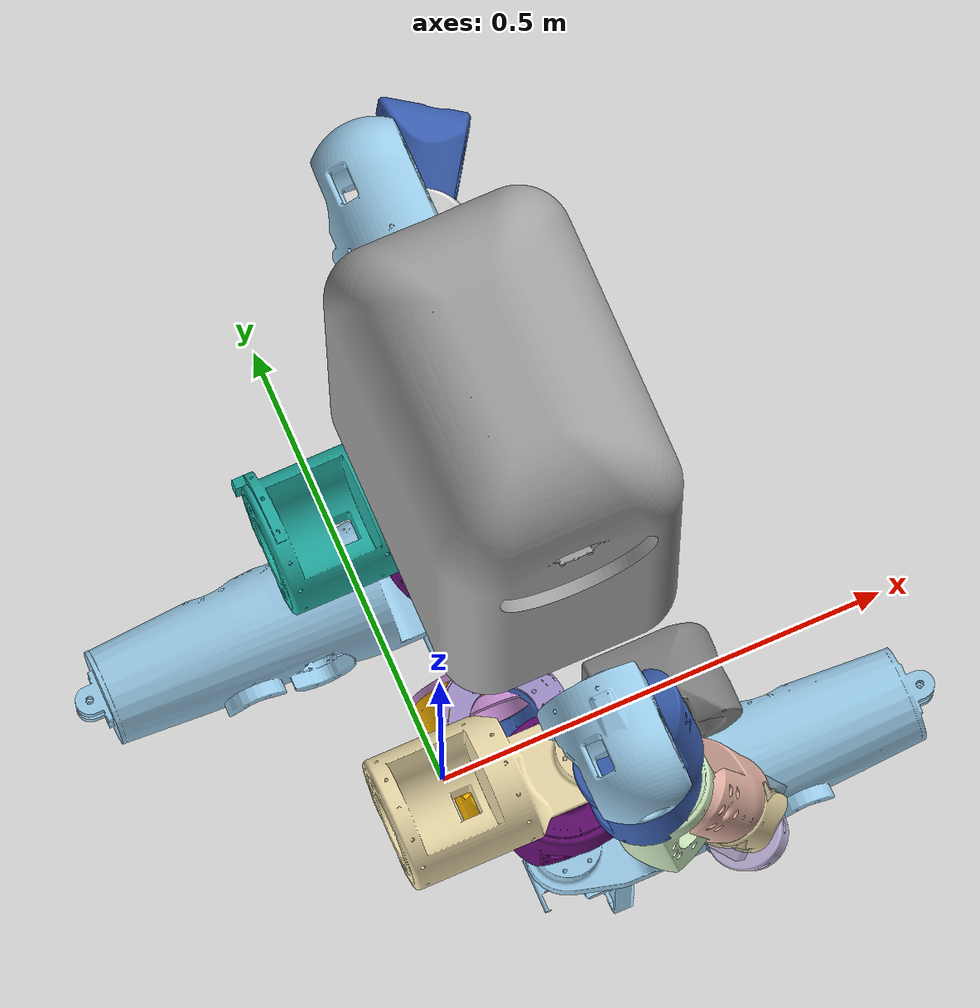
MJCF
<?xml version='1.0' encoding='utf-8'?>
<mujoco model="robot_harambe_v04">
  <compiler angle="radian" />
  <asset>
    <mesh name="b_base" content_type="model/stl" file="/home/alex/Documents/GitHub/ldr-harambe-arms-sim2real/src/robot_description/full_robot_description/meshes/visual/b_base.stl" />
    <mesh name="plate_base_right" content_type="model/stl" file="/home/alex/Documents/GitHub/ldr-harambe-arms-sim2real/src/robot_description/full_robot_description/meshes/visual/plate_base_right.stl" />
    <mesh name="f_base" content_type="model/stl" file="/home/alex/Documents/GitHub/ldr-harambe-arms-sim2real/src/robot_description/full_robot_description/meshes/visual/f_base.stl" />
    <mesh name="plate_base_left" content_type="model/stl" file="/home/alex/Documents/GitHub/ldr-harambe-arms-sim2real/src/robot_description/full_robot_description/meshes/visual/plate_base_left.stl" />
    <mesh name="plate_base_top" content_type="model/stl" file="/home/alex/Documents/GitHub/ldr-harambe-arms-sim2real/src/robot_description/full_robot_description/meshes/visual/plate_base_top.stl" />
    <mesh name="jockstrap" content_type="model/stl" file="/home/alex/Documents/GitHub/ldr-harambe-arms-sim2real/src/robot_description/full_robot_description/meshes/visual/jockstrap.stl" />
    <mesh name="urdf_simplified_torso" content_type="model/stl" file="/home/alex/Documents/GitHub/ldr-harambe-arms-sim2real/src/robot_description/full_robot_description/meshes/visual/urdf_simplified_torso.stl" />
    <mesh name="head" content_type="model/stl" file="/home/alex/Documents/GitHub/ldr-harambe-arms-sim2real/src/robot_description/full_robot_description/meshes/visual/head.stl" />
    <mesh name="l_shoulder" content_type="model/stl" file="/home/alex/Documents/GitHub/ldr-harambe-arms-sim2real/src/robot_description/full_robot_description/meshes/visual/l_shoulder.stl" />
    <mesh name="urdf_l_upper_arm_simplified" content_type="model/stl" file="/home/alex/Documents/GitHub/ldr-harambe-arms-sim2real/src/robot_description/full_robot_description/meshes/visual/urdf_l_upper_arm_simplified.stl" />
    <mesh name="urdf_l_elbow_simplified" content_type="model/stl" file="/home/alex/Documents/GitHub/ldr-harambe-arms-sim2real/src/robot_description/full_robot_description/meshes/visual/urdf_l_elbow_simplified.stl" />
    <mesh name="urdf_l_upper_forearm_simplified" content_type="model/stl" file="/home/alex/Documents/GitHub/ldr-harambe-arms-sim2real/src/robot_description/full_robot_description/meshes/visual/urdf_l_upper_forearm_simplified.stl" />
    <mesh name="urdf_l_lower_forearm_simplified" content_type="model/stl" file="/home/alex/Documents/GitHub/ldr-harambe-arms-sim2real/src/robot_description/full_robot_description/meshes/visual/urdf_l_lower_forearm_simplified.stl" />
    <mesh name="l_wrist" content_type="model/stl" file="/home/alex/Documents/GitHub/ldr-harambe-arms-sim2real/src/robot_description/full_robot_description/meshes/visual/l_wrist.stl" />
    <mesh name="r_shoulder" content_type="model/stl" file="/home/alex/Documents/GitHub/ldr-harambe-arms-sim2real/src/robot_description/full_robot_description/meshes/visual/r_shoulder.stl" />
    <mesh name="r_upper_arm" content_type="model/stl" file="/home/alex/Documents/GitHub/ldr-harambe-arms-sim2real/src/robot_description/full_robot_description/meshes/visual/r_upper_arm.stl" />
    <mesh name="r_elbow" content_type="model/stl" file="/home/alex/Documents/GitHub/ldr-harambe-arms-sim2real/src/robot_description/full_robot_description/meshes/visual/r_elbow.stl" />
    <mesh name="r_upper_forearm" content_type="model/stl" file="/home/alex/Documents/GitHub/ldr-harambe-arms-sim2real/src/robot_description/full_robot_description/meshes/visual/r_upper_forearm.stl" />
    <mesh name="r_lower_forearm" content_type="model/stl" file="/home/alex/Documents/GitHub/ldr-harambe-arms-sim2real/src/robot_description/full_robot_description/meshes/visual/r_lower_forearm.stl" />
    <mesh name="r_wrist" content_type="model/stl" file="/home/alex/Documents/GitHub/ldr-harambe-arms-sim2real/src/robot_description/full_robot_description/meshes/visual/r_wrist.stl" />
    <mesh name="hip" content_type="model/stl" file="/home/alex/Documents/GitHub/ldr-harambe-arms-sim2real/src/robot_description/full_robot_description/meshes/visual/hip.stl" />
    <mesh name="stopper_leg_28_75" content_type="model/stl" file="/home/alex/Documents/GitHub/ldr-harambe-arms-sim2real/src/robot_description/full_robot_description/meshes/visual/stopper_leg_28_75.stl" />
    <mesh name="l_upper_femur" content_type="model/stl" file="/home/alex/Documents/GitHub/ldr-harambe-arms-sim2real/src/robot_description/full_robot_description/meshes/visual/l_upper_femur.stl" />
    <mesh name="stopper_leg_22_5" content_type="model/stl" file="/home/alex/Documents/GitHub/ldr-harambe-arms-sim2real/src/robot_description/full_robot_description/meshes/visual/stopper_leg_22_5.stl" />
    <mesh name="lower_femur" content_type="model/stl" file="/home/alex/Documents/GitHub/ldr-harambe-arms-sim2real/src/robot_description/full_robot_description/meshes/visual/lower_femur.stl" />
    <mesh name="urdf_l_tibia_assembly" content_type="model/stl" file="/home/alex/Documents/GitHub/ldr-harambe-arms-sim2real/src/robot_description/full_robot_description/meshes/visual/urdf_l_tibia_assembly.stl" />
    <mesh name="urdf_ankle_assembly" content_type="model/stl" file="/home/alex/Documents/GitHub/ldr-harambe-arms-sim2real/src/robot_description/full_robot_description/meshes/visual/urdf_ankle_assembly.stl" />
    <mesh name="urdf_foot_assembly" content_type="model/stl" file="/home/alex/Documents/GitHub/ldr-harambe-arms-sim2real/src/robot_description/full_robot_description/meshes/visual/urdf_foot_assembly.stl" />
    <mesh name="r_upper_femur" content_type="model/stl" file="/home/alex/Documents/GitHub/ldr-harambe-arms-sim2real/src/robot_description/full_robot_description/meshes/visual/r_upper_femur.stl" />
    <mesh name="urdf_r_tibia_assembly" content_type="model/stl" file="/home/alex/Documents/GitHub/ldr-harambe-arms-sim2real/src/robot_description/full_robot_description/meshes/visual/urdf_r_tibia_assembly.stl" />
  </asset>
  <worldbody>
    <body name="urdf_base" pos="0 0 1.2085">
      <inertial pos="0.071983 -0.000707749 -0.396794" mass="5.734" diaginertia="0.029089 0.0240807 0.0160144" />
      <freejoint name="root" />
      <geom pos="0.070373 -0.000705351 -1.1821" quat="0.707105 0 0 -0.707108" type="mesh" rgba="0.980392 0.713725 0.00392157 1" mesh="b_base" />
      <geom pos="0.070373 -0.000705351 0.319901" quat="9.38184e-07 -0.707105 0.707108 -9.38187e-07" type="mesh" rgba="0.654902 0.823529 0.576471 1" mesh="plate_base_right" />
      <geom pos="0.070373 -0.000705351 -1.1821" quat="0.707105 0 0 -0.707108" type="mesh" rgba="0.231373 0.380392 0.705882 1" mesh="f_base" />
      <geom pos="0.070373 -0.000705351 -1.1821" quat="0.707105 0 0 -0.707108" type="mesh" rgba="0.764706 0.545098 0.803922 1" mesh="plate_base_left" />
      <geom pos="0.070373 -0.000705351 -1.1821" quat="0.707105 0 0 -0.707108" type="mesh" rgba="0.654902 0.584314 0.823529 1" mesh="plate_base_top" />
      <geom pos="0.070373 -0.000705351 -0.431099" quat="0.707105 0 0 -0.707108" type="mesh" rgba="0.615686 0.811765 0.929412 1" mesh="jockstrap" />
      <body name="urdf_simplified_torso" pos="0.070373 -0.000705351 -0.281099">
        <inertial pos="0.00199132 -4.19393e-05 0.328473" mass="5.90423" fullinertia="0.318197 0.294961 0.0735035 5.25211e-07 -0.00444278 9.73773e-05" />
        <joint name="waist_yaw_joint_X8" pos="0 0 0" axis="0 0 1" range="-1.57 1.57" armature="0.0577" limited="true" frictionloss="3.21" />
        <geom pos="0 0 0.26095" quat="0.707105 0 0 -0.707108" type="mesh" rgba="0.647059 0.647059 0.647059 1" mesh="urdf_simplified_torso" />
        <geom pos="4.11536e-05 -0.000384166 0.6725" quat="0.707105 0 0 -0.707108" type="mesh" rgba="0.737255 0.937255 0.917647 1" mesh="head" />
        <body name="urdf_l_shoulder_assembly" pos="0 0.1695 0.423977">
          <inertial pos="-0.00409836 0.0631966 -0.000544507" mass="1.246" fullinertia="0.00205876 0.00152408 0.00171602 -3.48871e-05 4.1195e-05 -7.63845e-06" />
          <joint name="left_shoulder_pitch_joint_X6" pos="0 0 0" axis="0 1 0" range="-3.02 1.69" armature="0.0254" limited="true" frictionloss="1.6" />
          <geom pos="-0.00129022 0.0502746 -0.000165439" quat="0.705787 0.0431688 -0.043169 -0.705789" type="mesh" rgba="0.615686 0.811765 0.929412 1" mesh="l_shoulder" />
          <body name="urdf_l_upper_arm_assembly" pos="0.0456571 0.07 0.00560611" quat="0.998135 0 -0.06105 0">
            <inertial pos="-0.0354438 0.0213187 -0.103332" mass="0.802" fullinertia="0.00190836 0.00203106 0.00107639 8.88428e-05 -0.000467525 0.000183116" />
            <joint name="left_shoulder_roll_joint_X6" pos="0 0 0" axis="1 0 0" range="-0.21 2.93" armature="0.0254" limited="true" frictionloss="1.6" />
            <geom pos="-0.0268697 0.0182152 -0.0914675" quat="0.918818 0.0965753 0.0400017 -0.380587" type="mesh" rgba="0.917647 0.917647 0.917647 1" mesh="urdf_l_upper_arm_simplified" />
            <body name="urdf_l_elbow_assembly" pos="-0.046 0.034306 -0.161394" quat="0.99444 0.104525 0.00133297 -0.0126919">
              <inertial pos="-0.004748 -0.00662541 -0.0710681" mass="1.109" fullinertia="0.00145153 0.00147549 0.00114035 5.51714e-05 -3.01713e-05 -7.59581e-05" />
              <joint name="left_shoulder_yaw_joint_X4" pos="0 0 0" axis="0 0 1" range="-1.75 2.97" armature="0.0389" limited="true" frictionloss="1.14" />
              <geom pos="-0.00676793 -0.0102107 -0.075" quat="0.334487 0.622994 0.334483 -0.622991" type="mesh" rgba="0.231373 0.380392 0.705882 1" mesh="urdf_l_elbow_simplified" />
              <body name="urdf_l_upper_forearm_assembly" pos="0.0193369 0.0291733 -0.075" quat="0.957432 -0.00275413 -0.00914002 -0.2885">
                <inertial pos="0.0267132 -0.0286559 -0.0999185" mass="0.707" fullinertia="0.00162524 0.00146156 0.000776911 9.29307e-05 0.000226906 -0.000353662" />
                <joint name="left_elbow_pitch_joint_X6" pos="0 0 0" axis="0 1 0" range="-1.31 1.83" armature="0.0254" limited="true" frictionloss="1.6" />
                <geom pos="0.0285991 -0.035 -0.115512" quat="0.701905 0.0855982 -0.0855985 -0.701908" type="mesh" rgba="0.498039 0.498039 0.498039 1" mesh="urdf_l_upper_forearm_simplified" />
                <body name="urdf_l_lower_forearm_assembly" pos="0.0391735 -0.035 -0.158223" quat="0.945344 -0.0369251 -0.115285 0.302772">
                  <inertial pos="-0.00311766 0.00307025 -0.0515634" mass="0.618" fullinertia="0.000628386 0.000617293 0.000448744 -1.68351e-06 -2.8195e-05 -3.24981e-07" />
                  <joint name="left_wrist_yaw_joint_X4" pos="0 0 0" axis="0 0 1" range="-2.36 2.36" armature="0.0389" limited="true" frictionloss="1.14" />
                  <geom pos="-0.00732538 0.00522865 -0.0615" quat="0.62868 -0.628682 -0.323668 0.323666" type="mesh" rgba="0.980392 0.713725 0.00392157 1" mesh="urdf_l_lower_forearm_simplified" />
                  <body name="urdf_l_wrist_assembly" pos="0.0219762 -0.0156859 -0.0615" quat="0.945019 -0.117921 0.0377673 -0.302668">
                    <inertial pos="-0.0219307 0.0106852 -0.0421315" mass="0.098" fullinertia="0.000100785 0.000121426 9.6353e-05 8.20205e-06 -3.2373e-05 6.79922e-06" />
                    <joint name="left_wrist_roll_joint_X4" pos="0 0 0" axis="1 0 0" range="-1.57 1.57" armature="0.0389" limited="true" frictionloss="1.14" />
                    <geom pos="-0.0219314 0.0106852 -0.0421315" quat="0.701664 0.0875548 0.0875544 -0.701667" type="mesh" rgba="0.8 0.74902 0.913725 1" mesh="l_wrist" />
                    <body name="left_hand" pos="-0.034 0.015 -0.06">
                      <inertial pos="-0.003 -0.066 -0.002" mass="0.576" diaginertia="0.00012281 8.3832e-05 7.6663e-05" />
                      <geom type="box" size="0.04 0.025 0.07" rgba="0.5 0.5 0.5 0.3" contype="0" conaffinity="0" />
                    </body>
                  </body>
                </body>
              </body>
            </body>
          </body>
        </body>
        <body name="urdf_r_shoulder_assembly" pos="0 -0.1695 0.423977">
          <inertial pos="-0.0047018 -0.0660727 -0.000602826" mass="1.02" fullinertia="0.0013257 0.00104972 0.0011458 1.37507e-05 2.16644e-05 3.46311e-06" />
          <joint name="right_shoulder_pitch_joint_X6" pos="0 0 0" axis="0 1 0" range="-3.02 1.69" armature="0.0254" limited="true" frictionloss="1.6" />
          <geom pos="-0.00128021 -0.0501448 -0.000164156" quat="0.705787 0.0431688 -0.043169 -0.705789" type="mesh" rgba="0.615686 0.811765 0.929412 1" mesh="r_shoulder" />
          <body name="urdf_r_upper_arm_assembly" pos="0.0456571 -0.07 0.00560611" quat="0.998135 0 -0.06105 0">
            <inertial pos="-0.0347331 -0.0216398 -0.101809" mass="0.802" fullinertia="0.00188605 0.00200295 0.00106039 -9.73927e-05 -0.00045821 -0.000209822" />
            <joint name="right_shoulder_roll_joint_X6" pos="0 0 0" axis="1 0 0" range="-2.93 0.21" armature="0.0254" limited="true" frictionloss="1.6" />
            <geom pos="-0.025543 -0.0188222 -0.0885532" quat="0.703232 -0.0739117 -0.0739114 -0.703235" type="mesh" rgba="0.231373 0.380392 0.705882 1" mesh="r_upper_arm" />
            <body name="urdf_r_elbow_assembly" pos="-0.046 -0.0353444 -0.166285" quat="0.994441 -0.104518 0.00133208 0.0126917">
              <inertial pos="-0.00464628 0.00706688 -0.0612736" mass="1.109" fullinertia="0.00142737 0.00147543 0.00111817 -5.60371e-05 -3.53572e-05 4.92594e-05" />
              <joint name="right_shoulder_yaw_joint_X4" pos="0 0 0" axis="0 0 1" range="-2.97 1.75" armature="0.0389" limited="true" frictionloss="1.14" />
              <geom pos="0.000192865 -0.000269971 -0.0512953" quat="0.881046 0 0 -0.473031" type="mesh" rgba="0.796078 0.905882 0.745098 1" mesh="r_elbow" />
              <body name="urdf_r_upper_forearm_assembly" pos="0.0220994 -0.033341 -0.065" quat="0.957433 0.00275256 -0.00913491 0.288497">
                <inertial pos="0.0266786 0.0327896 -0.0982602" mass="0.707" fullinertia="0.00160609 0.0014499 0.000766591 -9.59596e-05 0.000238823 0.00033935" />
                <joint name="right_elbow_pitch_joint_X6" pos="0 0 0" axis="0 1 0" range="-1.31 1.83" armature="0.0254" limited="true" frictionloss="1.6" />
                <geom pos="0.0247724 0.0254856 -0.0806199" quat="0.701905 0.0856045 -0.0856048 -0.701907" type="mesh" rgba="0.890196 0.698039 0.639216 1" mesh="r_upper_forearm" />
                <body name="urdf_r_lower_forearm_assembly" pos="0.0403774 0.04 -0.163076" quat="0.945344 0.036924 -0.115291 -0.302768">
                  <inertial pos="-0.00325453 -0.0023229 -0.046852" mass="0.618" fullinertia="0.000617744 0.000618165 0.000437775 -6.12409e-07 -3.11927e-05 -2.22632e-05" />
                  <joint name="right_wrist_yaw_joint_X4" pos="0 0 0" axis="0 0 1" range="-2.36 2.36" armature="0.0389" limited="true" frictionloss="1.14" />
                  <geom pos="0.00167509 0.00119554 -0.0333447" quat="0.889087 0 0 -0.457739" type="mesh" rgba="0.941176 0.87451 0.678431 1" mesh="r_lower_forearm" />
                  <body name="urdf_r_wrist_assembly" pos="0.0219763 0.0156857 -0.0565" quat="0.945021 0.117919 0.037766 0.302662">
                    <inertial pos="-0.0219123 -0.0106789 -0.0421059" mass="0.15" fullinertia="0.000154293 0.000185908 0.00014762 -1.25537e-05 -4.9547e-05 -1.03834e-05" />
                    <joint name="right_wrist_roll_joint_X4" pos="0 0 0" axis="1 0 0" range="-1.57 1.57" armature="0.0389" limited="true" frictionloss="1.14" />
                    <geom pos="-0.0219316 -0.0106852 -0.0421314" quat="0.701664 -0.0875537 -0.0875534 -0.701667" type="mesh" rgba="0.8 0.74902 0.913725 1" mesh="r_wrist" />
                    <body name="right_hand" pos="-0.029 -0.011 -0.06">
                      <inertial pos="-0.003 -0.066 0.002" mass="0.576" diaginertia="0.00012281 8.3832e-05 7.6663e-05" />
                      <geom type="box" size="0.04 0.025 0.07" rgba="0.5 0.5 0.5 0.3" contype="0" conaffinity="0" />
                    </body>
                  </body>
                </body>
              </body>
            </body>
          </body>
        </body>
        <site name="Default_site" pos="0 0 0" size="0.005" />
        <site name="TorsoIMU_site" pos="0.0665 0 0.35" size="0.005" />
      </body>
      <body name="urdf_hip_assembly" pos="0.070373 0.0872946 -0.431099">
        <inertial pos="-0.00387043 0.0602754 -3.33254e-05" mass="1.829" fullinertia="0.00318486 0.00257781 0.00266816 -1.248e-05 2.39579e-07 -3.95097e-06" />
        <joint name="left_hip_pitch_joint_X8" pos="0 0 0" axis="0 1 0" range="-2.53 1.57" armature="0.0577" limited="true" frictionloss="3.21" />
        <geom pos="0.03 0.062 0" quat="0.500001 0.499997 -0.499999 -0.500002" type="mesh" rgba="0.498039 0.498039 0.498039 1" mesh="hip" />
        <body name="urdf_l_upper_femur_assembly" pos="0.053 0.062 0">
          <inertial pos="-0.0460989 0.000881037 -0.148514" mass="1.93" fullinertia="0.00524838 0.00568591 0.00347712 2.68214e-05 -0.000973448 1.37224e-06" />
          <joint name="left_hip_roll_joint_X8" pos="0 0 0" axis="1 0 0" range="-0.35 3.14" armature="0.0577" limited="true" frictionloss="1.6" />
          <geom pos="0.571524 0.417098 -0.118" quat="0.676659 0.205263 -0.676658 0.205267" type="mesh" rgba="0.972549 0.529412 0.00392157 1" mesh="stopper_leg_28_75" />
          <geom pos="-0.0257799 0.00151622 -0.111785" quat="0.707105 0 0 -0.707108" type="mesh" rgba="0.141176 0.694118 0.65098 1" mesh="l_upper_femur" />
          <body name="urdf_lower_femur_assembly" pos="-0.053 0 -0.217">
            <inertial pos="2.11243e-05 -0.00408754 -0.100571" mass="1.832" fullinertia="0.00401519 0.00435606 0.00266245 1.60501e-06 -3.40991e-06 -0.000112967" />
            <joint name="left_hip_yaw_joint_X8" pos="0 0 0" axis="0 0 1" range="-1.57 1.57" armature="0.0577" limited="true" frictionloss="1.6" />
            <geom pos="0.751 0.000165033 -0.1" quat="-3.60488e-07 -0.707107 -4.83421e-06 0.707107" type="mesh" rgba="0.768627 0.886275 0.952941 1" mesh="stopper_leg_22_5" />
            <geom pos="-4.57402e-09 0.00389134 -0.068766" quat="0.707109 0 0 -0.707105" type="mesh" rgba="0.380392 0.0470588 0.435294 1" mesh="lower_femur" />
            <body name="urdf_l_tibia_assembly" pos="-1.45947e-07 0.055 -0.111">
              <inertial pos="0.01449 -0.0488281 -0.199552" mass="2.216" fullinertia="0.0205548 0.0209762 0.00480101 0.000222702 0.00143905 -0.00195792" />
              <joint name="left_knee_joint_X8" pos="0 0 0" axis="0 1 0" range="-0.17 1.57" armature="0.0577" limited="true" frictionloss="1.14" />
              <geom pos="0.000678721 -0.0431371 -0.186264" quat="0.707105 0 0 -0.707108" type="mesh" rgba="0.615686 0.811765 0.929412 1" mesh="urdf_l_tibia_assembly" />
              <body name="urdf_ankle_assembly" pos="0 -0.051 -0.395">
                <inertial pos="0 -0.004 -0.0125426" quat="0.707107 0 0 0.707107" mass="0.0818219" diaginertia="1.69449e-05 2.15245e-05 1.25404e-05" />
                <joint name="left_ankle_pitch_joint_X4" pos="0 0 0" axis="0 1 0" range="-0.79 0.79" armature="0.0389" limited="true" frictionloss="1.14" />
                <geom pos="0 -0.004 -0.0125426" quat="0.707105 0 0 -0.707108" type="mesh" rgba="0.615686 0.811765 0.929412 1" mesh="urdf_ankle_assembly" />
                <body name="urdf_foot_assembly" pos="-0.012 -0.004 -0.028">
                  <inertial pos="0.0436027 8.11114e-08 -0.0200314" mass="0.309" fullinertia="0.000232433 0.00121361 0.00137693 -1.58776e-11 -9.83566e-06 -6.57666e-10" />
                  <joint name="left_ankle_roll_joint_X4" pos="0 0 0" axis="1 0 0" range="-0.79 0.79" armature="0.0389" limited="true" frictionloss="1.14" />
                  <geom pos="0.0436027 7.24764e-08 -0.0200314" quat="0.707105 0 0 -0.707108" type="mesh" rgba="0.615686 0.811765 0.929412 1" mesh="urdf_foot_assembly" friction="2.0 0.5 0.1" condim="4" />
                  <site name="LeftFoot_site" pos="0.043 0 -0.033" size="0.005" />
                </body>
              </body>
            </body>
          </body>
        </body>
      </body>
      <body name="urdf_hip_assembly_2" pos="0.070373 -0.0887054 -0.431099">
        <inertial pos="-0.00387043 -0.0602754 3.33254e-05" mass="1.829" fullinertia="0.00318486 0.00257781 0.00266816 1.248e-05 -2.39579e-07 -3.95097e-06" />
        <joint name="right_hip_pitch_joint_X8" pos="0 0 0" axis="0 1 0" range="-2.53 1.57" armature="0.0577" limited="true" frictionloss="3.21" />
        <geom pos="0.03 -0.062 0" quat="0.499998 -0.5 -0.500002 0.5" type="mesh" rgba="0.498039 0.498039 0.498039 1" mesh="hip" />
        <body name="urdf_r_upper_femur_assemby" pos="0.053 -0.062 0">
          <inertial pos="-0.0457109 -0.000406025 -0.147969" mass="1.912" fullinertia="0.00512969 0.00557257 0.00336728 -1.22901e-06 -0.000930002 5.18759e-05" />
          <joint name="right_hip_roll_joint_X8" pos="0 0 0" axis="1 0 0" range="-3.14 0.35" armature="0.0577" limited="true" frictionloss="1.6" />
          <geom pos="-0.0257799 -0.00151624 -0.111785" quat="0.707105 0 0 -0.707108" type="mesh" rgba="0.941176 0.87451 0.678431 1" mesh="r_upper_femur" />
          <body name="urdf_lower_femur_assembly_2" pos="-0.053 0 -0.217">
            <inertial pos="9.05521e-10 0.00357383 -0.101307" mass="1.817" fullinertia="0.00383469 0.00421827 0.00258541 -1.04286e-09 2.0768e-08 0.00019709" />
            <joint name="right_hip_yaw_joint_X8" pos="0 0 0" axis="0 0 1" range="-1.57 1.57" armature="0.0577" limited="true" frictionloss="1.6" />
            <geom pos="4.57402e-09 -0.00389134 -0.068766" quat="0.707105 0 0 0.707108" type="mesh" rgba="0.380392 0.0470588 0.435294 1" mesh="lower_femur" />
            <body name="urdf_r_tibia_assembly" pos="1.45947e-07 -0.055 -0.111">
              <inertial pos="0.0144959 0.0488304 -0.199574" mass="2.215" fullinertia="0.0205486 0.0209705 0.00479841 -0.000222584 0.00144134 0.00195651" />
              <joint name="right_knee_joint_X8" pos="0 0 0" axis="0 1 0" range="-0.17 1.57" armature="0.0577" limited="true" frictionloss="1.14" />
              <geom pos="0.000678806 0.0431372 -0.186264" quat="0.707105 0 0 -0.707108" type="mesh" rgba="0.615686 0.811765 0.929412 1" mesh="urdf_r_tibia_assembly" />
              <body name="urdf_ankle_assembly_2" pos="0 0.059 -0.395">
                <inertial pos="0 -0.004 -0.0125426" quat="0.707107 0 0 0.707107" mass="0.0818219" diaginertia="1.69449e-05 2.15245e-05 1.25404e-05" />
                <joint name="right_ankle_pitch_joint_X4" pos="0 0 0" axis="0 1 0" range="-0.79 0.79" armature="0.0389" limited="true" frictionloss="1.14" />
                <geom pos="0 -0.004 -0.0125426" quat="0.707105 0 0 -0.707108" type="mesh" rgba="0.615686 0.811765 0.929412 1" mesh="urdf_ankle_assembly" />
                <body name="urdf_foot_assembly_2" pos="-0.012 -0.004 -0.028">
                  <inertial pos="0.0436027 8.11114e-08 -0.0200314" mass="0.309" fullinertia="0.000232433 0.00121361 0.00137693 -1.58776e-11 -9.83566e-06 -6.57666e-10" />
                  <joint name="right_ankle_roll_joint_X4" pos="0 0 0" axis="1 0 0" range="-0.79 0.79" armature="0.0389" limited="true" frictionloss="1.14" />
                  <geom pos="0.0436027 7.24764e-08 -0.0200314" quat="0.707105 0 0 -0.707108" type="mesh" rgba="0.615686 0.811765 0.929412 1" mesh="urdf_foot_assembly" friction="2.0 0.5 0.1" condim="4" />
                  <site name="RightFoot_site" pos="0.043 0 -0.033" size="0.005" />
                </body>
              </body>
            </body>
          </body>
        </body>
      </body>
      <site name="Base_site" pos="0 0 0" size="0.005" />
      <site name="PelvisIMU_site" pos="0.1069 -0.0007 -0.4707" size="0.005" />
    </body>
  </worldbody>
  <contact>
    <exclude body1="urdf_ankle_assembly" body2="urdf_ankle_assembly_2" />
    <exclude body1="urdf_ankle_assembly" body2="urdf_base" />
    <exclude body1="urdf_ankle_assembly" body2="urdf_foot_assembly" />
    <exclude body1="urdf_ankle_assembly" body2="urdf_foot_assembly_2" />
    <exclude body1="urdf_ankle_assembly" body2="urdf_hip_assembly" />
    <exclude body1="urdf_ankle_assembly" body2="urdf_hip_assembly_2" />
    <exclude body1="urdf_ankle_assembly" body2="urdf_l_elbow_assembly" />
    <exclude body1="urdf_ankle_assembly" body2="urdf_l_lower_forearm_assembly" />
    <exclude body1="urdf_ankle_assembly" body2="urdf_l_shoulder_assembly" />
    <exclude body1="urdf_ankle_assembly" body2="urdf_l_tibia_assembly" />
    <exclude body1="urdf_ankle_assembly" body2="urdf_l_upper_arm_assembly" />
    <exclude body1="urdf_ankle_assembly" body2="urdf_l_upper_femur_assembly" />
    <exclude body1="urdf_ankle_assembly" body2="urdf_l_upper_forearm_assembly" />
    <exclude body1="urdf_ankle_assembly" body2="urdf_l_wrist_assembly" />
    <exclude body1="urdf_ankle_assembly" body2="urdf_lower_femur_assembly" />
    <exclude body1="urdf_ankle_assembly" body2="urdf_lower_femur_assembly_2" />
    <exclude body1="urdf_ankle_assembly" body2="urdf_r_elbow_assembly" />
    <exclude body1="urdf_ankle_assembly" body2="urdf_r_lower_forearm_assembly" />
    <exclude body1="urdf_ankle_assembly" body2="urdf_r_shoulder_assembly" />
    <exclude body1="urdf_ankle_assembly" body2="urdf_r_tibia_assembly" />
    <exclude body1="urdf_ankle_assembly" body2="urdf_r_upper_arm_assembly" />
    <exclude body1="urdf_ankle_assembly" body2="urdf_r_upper_femur_assemby" />
    <exclude body1="urdf_ankle_assembly" body2="urdf_r_upper_forearm_assembly" />
    <exclude body1="urdf_ankle_assembly" body2="urdf_r_wrist_assembly" />
    <exclude body1="urdf_ankle_assembly" body2="urdf_simplified_torso" />
    <exclude body1="urdf_ankle_assembly_2" body2="urdf_base" />
    <exclude body1="urdf_ankle_assembly_2" body2="urdf_foot_assembly" />
    <exclude body1="urdf_ankle_assembly_2" body2="urdf_foot_assembly_2" />
    <exclude body1="urdf_ankle_assembly_2" body2="urdf_hip_assembly" />
    <exclude body1="urdf_ankle_assembly_2" body2="urdf_hip_assembly_2" />
    <exclude body1="urdf_ankle_assembly_2" body2="urdf_l_elbow_assembly" />
    <exclude body1="urdf_ankle_assembly_2" body2="urdf_l_lower_forearm_assembly" />
    <exclude body1="urdf_ankle_assembly_2" body2="urdf_l_shoulder_assembly" />
    <exclude body1="urdf_ankle_assembly_2" body2="urdf_l_tibia_assembly" />
    <exclude body1="urdf_ankle_assembly_2" body2="urdf_l_upper_arm_assembly" />
    <exclude body1="urdf_ankle_assembly_2" body2="urdf_l_upper_femur_assembly" />
    <exclude body1="urdf_ankle_assembly_2" body2="urdf_l_upper_forearm_assembly" />
    <exclude body1="urdf_ankle_assembly_2" body2="urdf_l_wrist_assembly" />
    <exclude body1="urdf_ankle_assembly_2" body2="urdf_lower_femur_assembly" />
    <exclude body1="urdf_ankle_assembly_2" body2="urdf_lower_femur_assembly_2" />
    <exclude body1="urdf_ankle_assembly_2" body2="urdf_r_elbow_assembly" />
    <exclude body1="urdf_ankle_assembly_2" body2="urdf_r_lower_forearm_assembly" />
    <exclude body1="urdf_ankle_assembly_2" body2="urdf_r_shoulder_assembly" />
    <exclude body1="urdf_ankle_assembly_2" body2="urdf_r_tibia_assembly" />
    <exclude body1="urdf_ankle_assembly_2" body2="urdf_r_upper_arm_assembly" />
    <exclude body1="urdf_ankle_assembly_2" body2="urdf_r_upper_femur_assemby" />
    <exclude body1="urdf_ankle_assembly_2" body2="urdf_r_upper_forearm_assembly" />
    <exclude body1="urdf_ankle_assembly_2" body2="urdf_r_wrist_assembly" />
    <exclude body1="urdf_ankle_assembly_2" body2="urdf_simplified_torso" />
    <exclude body1="urdf_base" body2="urdf_foot_assembly" />
    <exclude body1="urdf_base" body2="urdf_foot_assembly_2" />
    <exclude body1="urdf_base" body2="urdf_hip_assembly" />
    <exclude body1="urdf_base" body2="urdf_hip_assembly_2" />
    <exclude body1="urdf_base" body2="urdf_l_elbow_assembly" />
    <exclude body1="urdf_base" body2="urdf_l_lower_forearm_assembly" />
    <exclude body1="urdf_base" body2="urdf_l_shoulder_assembly" />
    <exclude body1="urdf_base" body2="urdf_l_tibia_assembly" />
    <exclude body1="urdf_base" body2="urdf_l_upper_arm_assembly" />
    <exclude body1="urdf_base" body2="urdf_l_upper_femur_assembly" />
    <exclude body1="urdf_base" body2="urdf_l_upper_forearm_assembly" />
    <exclude body1="urdf_base" body2="urdf_l_wrist_assembly" />
    <exclude body1="urdf_base" body2="urdf_lower_femur_assembly" />
    <exclude body1="urdf_base" body2="urdf_lower_femur_assembly_2" />
    <exclude body1="urdf_base" body2="urdf_r_elbow_assembly" />
    <exclude body1="urdf_base" body2="urdf_r_lower_forearm_assembly" />
    <exclude body1="urdf_base" body2="urdf_r_shoulder_assembly" />
    <exclude body1="urdf_base" body2="urdf_r_tibia_assembly" />
    <exclude body1="urdf_base" body2="urdf_r_upper_arm_assembly" />
    <exclude body1="urdf_base" body2="urdf_r_upper_femur_assemby" />
    <exclude body1="urdf_base" body2="urdf_r_upper_forearm_assembly" />
    <exclude body1="urdf_base" body2="urdf_r_wrist_assembly" />
    <exclude body1="urdf_base" body2="urdf_simplified_torso" />
    <exclude body1="urdf_foot_assembly" body2="urdf_foot_assembly_2" />
    <exclude body1="urdf_foot_assembly" body2="urdf_hip_assembly" />
    <exclude body1="urdf_foot_assembly" body2="urdf_hip_assembly_2" />
    <exclude body1="urdf_foot_assembly" body2="urdf_l_elbow_assembly" />
    <exclude body1="urdf_foot_assembly" body2="urdf_l_lower_forearm_assembly" />
    <exclude body1="urdf_foot_assembly" body2="urdf_l_shoulder_assembly" />
    <exclude body1="urdf_foot_assembly" body2="urdf_l_tibia_assembly" />
    <exclude body1="urdf_foot_assembly" body2="urdf_l_upper_arm_assembly" />
    <exclude body1="urdf_foot_assembly" body2="urdf_l_upper_femur_assembly" />
    <exclude body1="urdf_foot_assembly" body2="urdf_l_upper_forearm_assembly" />
    <exclude body1="urdf_foot_assembly" body2="urdf_l_wrist_assembly" />
    <exclude body1="urdf_foot_assembly" body2="urdf_lower_femur_assembly" />
    <exclude body1="urdf_foot_assembly" body2="urdf_lower_femur_assembly_2" />
    <exclude body1="urdf_foot_assembly" body2="urdf_r_elbow_assembly" />
    <exclude body1="urdf_foot_assembly" body2="urdf_r_lower_forearm_assembly" />
    <exclude body1="urdf_foot_assembly" body2="urdf_r_shoulder_assembly" />
    <exclude body1="urdf_foot_assembly" body2="urdf_r_tibia_assembly" />
    <exclude body1="urdf_foot_assembly" body2="urdf_r_upper_arm_assembly" />
    <exclude body1="urdf_foot_assembly" body2="urdf_r_upper_femur_assemby" />
    <exclude body1="urdf_foot_assembly" body2="urdf_r_upper_forearm_assembly" />
    <exclude body1="urdf_foot_assembly" body2="urdf_r_wrist_assembly" />
    <exclude body1="urdf_foot_assembly" body2="urdf_simplified_torso" />
    <exclude body1="urdf_foot_assembly_2" body2="urdf_hip_assembly" />
    <exclude body1="urdf_foot_assembly_2" body2="urdf_hip_assembly_2" />
    <exclude body1="urdf_foot_assembly_2" body2="urdf_l_elbow_assembly" />
    <exclude body1="urdf_foot_assembly_2" body2="urdf_l_lower_forearm_assembly" />
    <exclude body1="urdf_foot_assembly_2" body2="urdf_l_shoulder_assembly" />
    <exclude body1="urdf_foot_assembly_2" body2="urdf_l_tibia_assembly" />
    <exclude body1="urdf_foot_assembly_2" body2="urdf_l_upper_arm_assembly" />
    <exclude body1="urdf_foot_assembly_2" body2="urdf_l_upper_femur_assembly" />
    <exclude body1="urdf_foot_assembly_2" body2="urdf_l_upper_forearm_assembly" />
    <exclude body1="urdf_foot_assembly_2" body2="urdf_l_wrist_assembly" />
    <exclude body1="urdf_foot_assembly_2" body2="urdf_lower_femur_assembly" />
    <exclude body1="urdf_foot_assembly_2" body2="urdf_lower_femur_assembly_2" />
    <exclude body1="urdf_foot_assembly_2" body2="urdf_r_elbow_assembly" />
    <exclude body1="urdf_foot_assembly_2" body2="urdf_r_lower_forearm_assembly" />
    <exclude body1="urdf_foot_assembly_2" body2="urdf_r_shoulder_assembly" />
    <exclude body1="urdf_foot_assembly_2" body2="urdf_r_tibia_assembly" />
    <exclude body1="urdf_foot_assembly_2" body2="urdf_r_upper_arm_assembly" />
    <exclude body1="urdf_foot_assembly_2" body2="urdf_r_upper_femur_assemby" />
    <exclude body1="urdf_foot_assembly_2" body2="urdf_r_upper_forearm_assembly" />
    <exclude body1="urdf_foot_assembly_2" body2="urdf_r_wrist_assembly" />
    <exclude body1="urdf_foot_assembly_2" body2="urdf_simplified_torso" />
    <exclude body1="urdf_hip_assembly" body2="urdf_hip_assembly_2" />
    <exclude body1="urdf_hip_assembly" body2="urdf_l_elbow_assembly" />
    <exclude body1="urdf_hip_assembly" body2="urdf_l_lower_forearm_assembly" />
    <exclude body1="urdf_hip_assembly" body2="urdf_l_shoulder_assembly" />
    <exclude body1="urdf_hip_assembly" body2="urdf_l_tibia_assembly" />
    <exclude body1="urdf_hip_assembly" body2="urdf_l_upper_arm_assembly" />
    <exclude body1="urdf_hip_assembly" body2="urdf_l_upper_femur_assembly" />
    <exclude body1="urdf_hip_assembly" body2="urdf_l_upper_forearm_assembly" />
    <exclude body1="urdf_hip_assembly" body2="urdf_l_wrist_assembly" />
    <exclude body1="urdf_hip_assembly" body2="urdf_lower_femur_assembly" />
    <exclude body1="urdf_hip_assembly" body2="urdf_lower_femur_assembly_2" />
    <exclude body1="urdf_hip_assembly" body2="urdf_r_elbow_assembly" />
    <exclude body1="urdf_hip_assembly" body2="urdf_r_lower_forearm_assembly" />
    <exclude body1="urdf_hip_assembly" body2="urdf_r_shoulder_assembly" />
    <exclude body1="urdf_hip_assembly" body2="urdf_r_tibia_assembly" />
    <exclude body1="urdf_hip_assembly" body2="urdf_r_upper_arm_assembly" />
    <exclude body1="urdf_hip_assembly" body2="urdf_r_upper_femur_assemby" />
    <exclude body1="urdf_hip_assembly" body2="urdf_r_upper_forearm_assembly" />
    <exclude body1="urdf_hip_assembly" body2="urdf_r_wrist_assembly" />
    <exclude body1="urdf_hip_assembly" body2="urdf_simplified_torso" />
    <exclude body1="urdf_hip_assembly_2" body2="urdf_l_elbow_assembly" />
    <exclude body1="urdf_hip_assembly_2" body2="urdf_l_lower_forearm_assembly" />
    <exclude body1="urdf_hip_assembly_2" body2="urdf_l_shoulder_assembly" />
    <exclude body1="urdf_hip_assembly_2" body2="urdf_l_tibia_assembly" />
    <exclude body1="urdf_hip_assembly_2" body2="urdf_l_upper_arm_assembly" />
    <exclude body1="urdf_hip_assembly_2" body2="urdf_l_upper_femur_assembly" />
    <exclude body1="urdf_hip_assembly_2" body2="urdf_l_upper_forearm_assembly" />
    <exclude body1="urdf_hip_assembly_2" body2="urdf_l_wrist_assembly" />
    <exclude body1="urdf_hip_assembly_2" body2="urdf_lower_femur_assembly" />
    <exclude body1="urdf_hip_assembly_2" body2="urdf_lower_femur_assembly_2" />
    <exclude body1="urdf_hip_assembly_2" body2="urdf_r_elbow_assembly" />
    <exclude body1="urdf_hip_assembly_2" body2="urdf_r_lower_forearm_assembly" />
    <exclude body1="urdf_hip_assembly_2" body2="urdf_r_shoulder_assembly" />
    <exclude body1="urdf_hip_assembly_2" body2="urdf_r_tibia_assembly" />
    <exclude body1="urdf_hip_assembly_2" body2="urdf_r_upper_arm_assembly" />
    <exclude body1="urdf_hip_assembly_2" body2="urdf_r_upper_femur_assemby" />
    <exclude body1="urdf_hip_assembly_2" body2="urdf_r_upper_forearm_assembly" />
    <exclude body1="urdf_hip_assembly_2" body2="urdf_r_wrist_assembly" />
    <exclude body1="urdf_hip_assembly_2" body2="urdf_simplified_torso" />
    <exclude body1="urdf_l_elbow_assembly" body2="urdf_l_lower_forearm_assembly" />
    <exclude body1="urdf_l_elbow_assembly" body2="urdf_l_shoulder_assembly" />
    <exclude body1="urdf_l_elbow_assembly" body2="urdf_l_tibia_assembly" />
    <exclude body1="urdf_l_elbow_assembly" body2="urdf_l_upper_arm_assembly" />
    <exclude body1="urdf_l_elbow_assembly" body2="urdf_l_upper_femur_assembly" />
    <exclude body1="urdf_l_elbow_assembly" body2="urdf_l_upper_forearm_assembly" />
    <exclude body1="urdf_l_elbow_assembly" body2="urdf_l_wrist_assembly" />
    <exclude body1="urdf_l_elbow_assembly" body2="urdf_lower_femur_assembly" />
    <exclude body1="urdf_l_elbow_assembly" body2="urdf_lower_femur_assembly_2" />
    <exclude body1="urdf_l_elbow_assembly" body2="urdf_r_elbow_assembly" />
    <exclude body1="urdf_l_elbow_assembly" body2="urdf_r_lower_forearm_assembly" />
    <exclude body1="urdf_l_elbow_assembly" body2="urdf_r_shoulder_assembly" />
    <exclude body1="urdf_l_elbow_assembly" body2="urdf_r_tibia_assembly" />
    <exclude body1="urdf_l_elbow_assembly" body2="urdf_r_upper_arm_assembly" />
    <exclude body1="urdf_l_elbow_assembly" body2="urdf_r_upper_femur_assemby" />
    <exclude body1="urdf_l_elbow_assembly" body2="urdf_r_upper_forearm_assembly" />
    <exclude body1="urdf_l_elbow_assembly" body2="urdf_r_wrist_assembly" />
    <exclude body1="urdf_l_elbow_assembly" body2="urdf_simplified_torso" />
    <exclude body1="urdf_l_lower_forearm_assembly" body2="urdf_l_shoulder_assembly" />
    <exclude body1="urdf_l_lower_forearm_assembly" body2="urdf_l_tibia_assembly" />
    <exclude body1="urdf_l_lower_forearm_assembly" body2="urdf_l_upper_arm_assembly" />
    <exclude body1="urdf_l_lower_forearm_assembly" body2="urdf_l_upper_femur_assembly" />
    <exclude body1="urdf_l_lower_forearm_assembly" body2="urdf_l_upper_forearm_assembly" />
    <exclude body1="urdf_l_lower_forearm_assembly" body2="urdf_l_wrist_assembly" />
    <exclude body1="urdf_l_lower_forearm_assembly" body2="urdf_lower_femur_assembly" />
    <exclude body1="urdf_l_lower_forearm_assembly" body2="urdf_lower_femur_assembly_2" />
    <exclude body1="urdf_l_lower_forearm_assembly" body2="urdf_r_elbow_assembly" />
    <exclude body1="urdf_l_lower_forearm_assembly" body2="urdf_r_lower_forearm_assembly" />
    <exclude body1="urdf_l_lower_forearm_assembly" body2="urdf_r_shoulder_assembly" />
    <exclude body1="urdf_l_lower_forearm_assembly" body2="urdf_r_tibia_assembly" />
    <exclude body1="urdf_l_lower_forearm_assembly" body2="urdf_r_upper_arm_assembly" />
    <exclude body1="urdf_l_lower_forearm_assembly" body2="urdf_r_upper_femur_assemby" />
    <exclude body1="urdf_l_lower_forearm_assembly" body2="urdf_r_upper_forearm_assembly" />
    <exclude body1="urdf_l_lower_forearm_assembly" body2="urdf_r_wrist_assembly" />
    <exclude body1="urdf_l_lower_forearm_assembly" body2="urdf_simplified_torso" />
    <exclude body1="urdf_l_shoulder_assembly" body2="urdf_l_tibia_assembly" />
    <exclude body1="urdf_l_shoulder_assembly" body2="urdf_l_upper_arm_assembly" />
    <exclude body1="urdf_l_shoulder_assembly" body2="urdf_l_upper_femur_assembly" />
    <exclude body1="urdf_l_shoulder_assembly" body2="urdf_l_upper_forearm_assembly" />
    <exclude body1="urdf_l_shoulder_assembly" body2="urdf_l_wrist_assembly" />
    <exclude body1="urdf_l_shoulder_assembly" body2="urdf_lower_femur_assembly" />
    <exclude body1="urdf_l_shoulder_assembly" body2="urdf_lower_femur_assembly_2" />
    <exclude body1="urdf_l_shoulder_assembly" body2="urdf_r_elbow_assembly" />
    <exclude body1="urdf_l_shoulder_assembly" body2="urdf_r_lower_forearm_assembly" />
    <exclude body1="urdf_l_shoulder_assembly" body2="urdf_r_shoulder_assembly" />
    <exclude body1="urdf_l_shoulder_assembly" body2="urdf_r_tibia_assembly" />
    <exclude body1="urdf_l_shoulder_assembly" body2="urdf_r_upper_arm_assembly" />
    <exclude body1="urdf_l_shoulder_assembly" body2="urdf_r_upper_femur_assemby" />
    <exclude body1="urdf_l_shoulder_assembly" body2="urdf_r_upper_forearm_assembly" />
    <exclude body1="urdf_l_shoulder_assembly" body2="urdf_r_wrist_assembly" />
    <exclude body1="urdf_l_shoulder_assembly" body2="urdf_simplified_torso" />
    <exclude body1="urdf_l_tibia_assembly" body2="urdf_l_upper_arm_assembly" />
    <exclude body1="urdf_l_tibia_assembly" body2="urdf_l_upper_femur_assembly" />
    <exclude body1="urdf_l_tibia_assembly" body2="urdf_l_upper_forearm_assembly" />
    <exclude body1="urdf_l_tibia_assembly" body2="urdf_l_wrist_assembly" />
    <exclude body1="urdf_l_tibia_assembly" body2="urdf_lower_femur_assembly" />
    <exclude body1="urdf_l_tibia_assembly" body2="urdf_lower_femur_assembly_2" />
    <exclude body1="urdf_l_tibia_assembly" body2="urdf_r_elbow_assembly" />
    <exclude body1="urdf_l_tibia_assembly" body2="urdf_r_lower_forearm_assembly" />
    <exclude body1="urdf_l_tibia_assembly" body2="urdf_r_shoulder_assembly" />
    <exclude body1="urdf_l_tibia_assembly" body2="urdf_r_tibia_assembly" />
    <exclude body1="urdf_l_tibia_assembly" body2="urdf_r_upper_arm_assembly" />
    <exclude body1="urdf_l_tibia_assembly" body2="urdf_r_upper_femur_assemby" />
    <exclude body1="urdf_l_tibia_assembly" body2="urdf_r_upper_forearm_assembly" />
    <exclude body1="urdf_l_tibia_assembly" body2="urdf_r_wrist_assembly" />
    <exclude body1="urdf_l_tibia_assembly" body2="urdf_simplified_torso" />
    <exclude body1="urdf_l_upper_arm_assembly" body2="urdf_l_upper_femur_assembly" />
    <exclude body1="urdf_l_upper_arm_assembly" body2="urdf_l_upper_forearm_assembly" />
    <exclude body1="urdf_l_upper_arm_assembly" body2="urdf_l_wrist_assembly" />
    <exclude body1="urdf_l_upper_arm_assembly" body2="urdf_lower_femur_assembly" />
    <exclude body1="urdf_l_upper_arm_assembly" body2="urdf_lower_femur_assembly_2" />
    <exclude body1="urdf_l_upper_arm_assembly" body2="urdf_r_elbow_assembly" />
    <exclude body1="urdf_l_upper_arm_assembly" body2="urdf_r_lower_forearm_assembly" />
    <exclude body1="urdf_l_upper_arm_assembly" body2="urdf_r_shoulder_assembly" />
    <exclude body1="urdf_l_upper_arm_assembly" body2="urdf_r_tibia_assembly" />
    <exclude body1="urdf_l_upper_arm_assembly" body2="urdf_r_upper_arm_assembly" />
    <exclude body1="urdf_l_upper_arm_assembly" body2="urdf_r_upper_femur_assemby" />
    <exclude body1="urdf_l_upper_arm_assembly" body2="urdf_r_upper_forearm_assembly" />
    <exclude body1="urdf_l_upper_arm_assembly" body2="urdf_r_wrist_assembly" />
    <exclude body1="urdf_l_upper_arm_assembly" body2="urdf_simplified_torso" />
    <exclude body1="urdf_l_upper_femur_assembly" body2="urdf_l_upper_forearm_assembly" />
    <exclude body1="urdf_l_upper_femur_assembly" body2="urdf_l_wrist_assembly" />
    <exclude body1="urdf_l_upper_femur_assembly" body2="urdf_lower_femur_assembly" />
    <exclude body1="urdf_l_upper_femur_assembly" body2="urdf_lower_femur_assembly_2" />
    <exclude body1="urdf_l_upper_femur_assembly" body2="urdf_r_elbow_assembly" />
    <exclude body1="urdf_l_upper_femur_assembly" body2="urdf_r_lower_forearm_assembly" />
    <exclude body1="urdf_l_upper_femur_assembly" body2="urdf_r_shoulder_assembly" />
    <exclude body1="urdf_l_upper_femur_assembly" body2="urdf_r_tibia_assembly" />
    <exclude body1="urdf_l_upper_femur_assembly" body2="urdf_r_upper_arm_assembly" />
    <exclude body1="urdf_l_upper_femur_assembly" body2="urdf_r_upper_femur_assemby" />
    <exclude body1="urdf_l_upper_femur_assembly" body2="urdf_r_upper_forearm_assembly" />
    <exclude body1="urdf_l_upper_femur_assembly" body2="urdf_r_wrist_assembly" />
    <exclude body1="urdf_l_upper_femur_assembly" body2="urdf_simplified_torso" />
    <exclude body1="urdf_l_upper_forearm_assembly" body2="urdf_l_wrist_assembly" />
    <exclude body1="urdf_l_upper_forearm_assembly" body2="urdf_lower_femur_assembly" />
    <exclude body1="urdf_l_upper_forearm_assembly" body2="urdf_lower_femur_assembly_2" />
    <exclude body1="urdf_l_upper_forearm_assembly" body2="urdf_r_elbow_assembly" />
    <exclude body1="urdf_l_upper_forearm_assembly" body2="urdf_r_lower_forearm_assembly" />
    <exclude body1="urdf_l_upper_forearm_assembly" body2="urdf_r_shoulder_assembly" />
    <exclude body1="urdf_l_upper_forearm_assembly" body2="urdf_r_tibia_assembly" />
    <exclude body1="urdf_l_upper_forearm_assembly" body2="urdf_r_upper_arm_assembly" />
    <exclude body1="urdf_l_upper_forearm_assembly" body2="urdf_r_upper_femur_assemby" />
    <exclude body1="urdf_l_upper_forearm_assembly" body2="urdf_r_upper_forearm_assembly" />
    <exclude body1="urdf_l_upper_forearm_assembly" body2="urdf_r_wrist_assembly" />
    <exclude body1="urdf_l_upper_forearm_assembly" body2="urdf_simplified_torso" />
    <exclude body1="urdf_l_wrist_assembly" body2="urdf_lower_femur_assembly" />
    <exclude body1="urdf_l_wrist_assembly" body2="urdf_lower_femur_assembly_2" />
    <exclude body1="urdf_l_wrist_assembly" body2="urdf_r_elbow_assembly" />
    <exclude body1="urdf_l_wrist_assembly" body2="urdf_r_lower_forearm_assembly" />
    <exclude body1="urdf_l_wrist_assembly" body2="urdf_r_shoulder_assembly" />
    <exclude body1="urdf_l_wrist_assembly" body2="urdf_r_tibia_assembly" />
    <exclude body1="urdf_l_wrist_assembly" body2="urdf_r_upper_arm_assembly" />
    <exclude body1="urdf_l_wrist_assembly" body2="urdf_r_upper_femur_assemby" />
    <exclude body1="urdf_l_wrist_assembly" body2="urdf_r_upper_forearm_assembly" />
    <exclude body1="urdf_l_wrist_assembly" body2="urdf_r_wrist_assembly" />
    <exclude body1="urdf_l_wrist_assembly" body2="urdf_simplified_torso" />
    <exclude body1="urdf_lower_femur_assembly" body2="urdf_lower_femur_assembly_2" />
    <exclude body1="urdf_lower_femur_assembly" body2="urdf_r_elbow_assembly" />
    <exclude body1="urdf_lower_femur_assembly" body2="urdf_r_lower_forearm_assembly" />
    <exclude body1="urdf_lower_femur_assembly" body2="urdf_r_shoulder_assembly" />
    <exclude body1="urdf_lower_femur_assembly" body2="urdf_r_tibia_assembly" />
    <exclude body1="urdf_lower_femur_assembly" body2="urdf_r_upper_arm_assembly" />
    <exclude body1="urdf_lower_femur_assembly" body2="urdf_r_upper_femur_assemby" />
    <exclude body1="urdf_lower_femur_assembly" body2="urdf_r_upper_forearm_assembly" />
    <exclude body1="urdf_lower_femur_assembly" body2="urdf_r_wrist_assembly" />
    <exclude body1="urdf_lower_femur_assembly" body2="urdf_simplified_torso" />
    <exclude body1="urdf_lower_femur_assembly_2" body2="urdf_r_elbow_assembly" />
    <exclude body1="urdf_lower_femur_assembly_2" body2="urdf_r_lower_forearm_assembly" />
    <exclude body1="urdf_lower_femur_assembly_2" body2="urdf_r_shoulder_assembly" />
    <exclude body1="urdf_lower_femur_assembly_2" body2="urdf_r_tibia_assembly" />
    <exclude body1="urdf_lower_femur_assembly_2" body2="urdf_r_upper_arm_assembly" />
    <exclude body1="urdf_lower_femur_assembly_2" body2="urdf_r_upper_femur_assemby" />
    <exclude body1="urdf_lower_femur_assembly_2" body2="urdf_r_upper_forearm_assembly" />
    <exclude body1="urdf_lower_femur_assembly_2" body2="urdf_r_wrist_assembly" />
    <exclude body1="urdf_lower_femur_assembly_2" body2="urdf_simplified_torso" />
    <exclude body1="urdf_r_elbow_assembly" body2="urdf_r_lower_forearm_assembly" />
    <exclude body1="urdf_r_elbow_assembly" body2="urdf_r_shoulder_assembly" />
    <exclude body1="urdf_r_elbow_assembly" body2="urdf_r_tibia_assembly" />
    <exclude body1="urdf_r_elbow_assembly" body2="urdf_r_upper_arm_assembly" />
    <exclude body1="urdf_r_elbow_assembly" body2="urdf_r_upper_femur_assemby" />
    <exclude body1="urdf_r_elbow_assembly" body2="urdf_r_upper_forearm_assembly" />
    <exclude body1="urdf_r_elbow_assembly" body2="urdf_r_wrist_assembly" />
    <exclude body1="urdf_r_elbow_assembly" body2="urdf_simplified_torso" />
    <exclude body1="urdf_r_lower_forearm_assembly" body2="urdf_r_shoulder_assembly" />
    <exclude body1="urdf_r_lower_forearm_assembly" body2="urdf_r_tibia_assembly" />
    <exclude body1="urdf_r_lower_forearm_assembly" body2="urdf_r_upper_arm_assembly" />
    <exclude body1="urdf_r_lower_forearm_assembly" body2="urdf_r_upper_femur_assemby" />
    <exclude body1="urdf_r_lower_forearm_assembly" body2="urdf_r_upper_forearm_assembly" />
    <exclude body1="urdf_r_lower_forearm_assembly" body2="urdf_r_wrist_assembly" />
    <exclude body1="urdf_r_lower_forearm_assembly" body2="urdf_simplified_torso" />
    <exclude body1="urdf_r_shoulder_assembly" body2="urdf_r_tibia_assembly" />
    <exclude body1="urdf_r_shoulder_assembly" body2="urdf_r_upper_arm_assembly" />
    <exclude body1="urdf_r_shoulder_assembly" body2="urdf_r_upper_femur_assemby" />
    <exclude body1="urdf_r_shoulder_assembly" body2="urdf_r_upper_forearm_assembly" />
    <exclude body1="urdf_r_shoulder_assembly" body2="urdf_r_wrist_assembly" />
    <exclude body1="urdf_r_shoulder_assembly" body2="urdf_simplified_torso" />
    <exclude body1="urdf_r_tibia_assembly" body2="urdf_r_upper_arm_assembly" />
    <exclude body1="urdf_r_tibia_assembly" body2="urdf_r_upper_femur_assemby" />
    <exclude body1="urdf_r_tibia_assembly" body2="urdf_r_upper_forearm_assembly" />
    <exclude body1="urdf_r_tibia_assembly" body2="urdf_r_wrist_assembly" />
    <exclude body1="urdf_r_tibia_assembly" body2="urdf_simplified_torso" />
    <exclude body1="urdf_r_upper_arm_assembly" body2="urdf_r_upper_femur_assemby" />
    <exclude body1="urdf_r_upper_arm_assembly" body2="urdf_r_upper_forearm_assembly" />
    <exclude body1="urdf_r_upper_arm_assembly" body2="urdf_r_wrist_assembly" />
    <exclude body1="urdf_r_upper_arm_assembly" body2="urdf_simplified_torso" />
    <exclude body1="urdf_r_upper_femur_assemby" body2="urdf_r_upper_forearm_assembly" />
    <exclude body1="urdf_r_upper_femur_assemby" body2="urdf_r_wrist_assembly" />
    <exclude body1="urdf_r_upper_femur_assemby" body2="urdf_simplified_torso" />
    <exclude body1="urdf_r_upper_forearm_assembly" body2="urdf_r_wrist_assembly" />
    <exclude body1="urdf_r_upper_forearm_assembly" body2="urdf_simplified_torso" />
    <exclude body1="urdf_r_wrist_assembly" body2="urdf_simplified_torso" />
  </contact>
  <option timestep="0.001" impratio="10" solver="Newton" iterations="50" tolerance="1e-10" noslip_iterations="10" />
  <default>
    <geom friction="2.0 0.5 0.1" condim="4" solref="0.002 1" solimp="0.98 0.99 0.0001 0.5 2" />
  </default>
  <actuator>
    <motor name="left_shoulder_pitch_joint_X6" joint="left_shoulder_pitch_joint_X6" ctrlrange="-23 23" ctrllimited="true" />
    <motor name="left_shoulder_roll_joint_X6" joint="left_shoulder_roll_joint_X6" ctrlrange="-23 23" ctrllimited="true" />
    <motor name="left_shoulder_yaw_joint_X4" joint="left_shoulder_yaw_joint_X4" ctrlrange="-12.075 12.075" ctrllimited="true" />
    <motor name="left_elbow_pitch_joint_X6" joint="left_elbow_pitch_joint_X6" ctrlrange="-23 23" ctrllimited="true" />
    <motor name="left_wrist_yaw_joint_X4" joint="left_wrist_yaw_joint_X4" ctrlrange="-12.075 12.075" ctrllimited="true" />
    <motor name="left_wrist_roll_joint_X4" joint="left_wrist_roll_joint_X4" ctrlrange="-12.075 12.075" ctrllimited="true" />
    <motor name="right_shoulder_pitch_joint_X6" joint="right_shoulder_pitch_joint_X6" ctrlrange="-23 23" ctrllimited="true" />
    <motor name="right_shoulder_roll_joint_X6" joint="right_shoulder_roll_joint_X6" ctrlrange="-23 23" ctrllimited="true" />
    <motor name="right_shoulder_yaw_joint_X4" joint="right_shoulder_yaw_joint_X4" ctrlrange="-12.075 12.075" ctrllimited="true" />
    <motor name="right_elbow_pitch_joint_X6" joint="right_elbow_pitch_joint_X6" ctrlrange="-23 23" ctrllimited="true" />
    <motor name="right_wrist_yaw_joint_X4" joint="right_wrist_yaw_joint_X4" ctrlrange="-12.075 12.075" ctrllimited="true" />
    <motor name="right_wrist_roll_joint_X4" joint="right_wrist_roll_joint_X4" ctrlrange="-12.075 12.075" ctrllimited="true" />
    <motor name="waist_yaw_joint_X8" joint="waist_yaw_joint_X8" ctrlrange="-72 72" ctrllimited="true" />
    <motor name="left_hip_pitch_joint_X8" joint="left_hip_pitch_joint_X8" ctrlrange="-72 72" ctrllimited="true" />
    <motor name="left_hip_roll_joint_X8" joint="left_hip_roll_joint_X8" ctrlrange="-72 72" ctrllimited="true" />
    <motor name="left_hip_yaw_joint_X8" joint="left_hip_yaw_joint_X8" ctrlrange="-72 72" ctrllimited="true" />
    <motor name="left_knee_joint_X8" joint="left_knee_joint_X8" ctrlrange="-72 72" ctrllimited="true" />
    <motor name="left_ankle_pitch_joint_X4" joint="left_ankle_pitch_joint_X4" ctrlrange="-96.6 96.6" ctrllimited="true" />
    <motor name="left_ankle_roll_joint_X4" joint="left_ankle_roll_joint_X4" ctrlrange="-28.98 28.98" ctrllimited="true" />
    <motor name="right_hip_pitch_joint_X8" joint="right_hip_pitch_joint_X8" ctrlrange="-72 72" ctrllimited="true" />
    <motor name="right_hip_roll_joint_X8" joint="right_hip_roll_joint_X8" ctrlrange="-72 72" ctrllimited="true" />
    <motor name="right_hip_yaw_joint_X8" joint="right_hip_yaw_joint_X8" ctrlrange="-72 72" ctrllimited="true" />
    <motor name="right_knee_joint_X8" joint="right_knee_joint_X8" ctrlrange="-72 72" ctrllimited="true" />
    <motor name="right_ankle_pitch_joint_X4" joint="right_ankle_pitch_joint_X4" ctrlrange="-96.6 96.6" ctrllimited="true" />
    <motor name="right_ankle_roll_joint_X4" joint="right_ankle_roll_joint_X4" ctrlrange="-28.98 28.98" ctrllimited="true" />
  </actuator>
  <sensor>
    <force name="LeftFoot_fsensor" site="LeftFoot_site" />
    <torque name="LeftFoot_tsensor" site="LeftFoot_site" />
    <force name="RightFoot_fsensor" site="RightFoot_site" />
    <torque name="RightFoot_tsensor" site="RightFoot_site" />
    <gyro name="Default_gyro" site="Default_site" />
    <accelerometer name="Default_accelerometer" site="Default_site" />
    <gyro name="PelvisIMU_gyro" site="PelvisIMU_site" />
    <accelerometer name="PelvisIMU_accelerometer" site="PelvisIMU_site" />
    <gyro name="TorsoIMU_gyro" site="TorsoIMU_site" />
    <accelerometer name="TorsoIMU_accelerometer" site="TorsoIMU_site" />
    <gyro name="FloatingBase_gyro" site="Base_site" />
    <accelerometer name="FloatingBase_accelerometer" site="Base_site" />
  </sensor>
  <keyframe>
    <key name="home" qpos="0.0 0.0 1.208 1.0 0.0 0.0 0.0 0.0 0.0 0.0 0.0 0.0 0.0 0.0 0.0 0.0 0.0 0.0 0.0 0.0 -0.15 0.0 0.0 0.3 -0.15 0.0 -0.15 0.0 0.0 0.3 -0.15 0.0" />
  </keyframe>
</mujoco>
